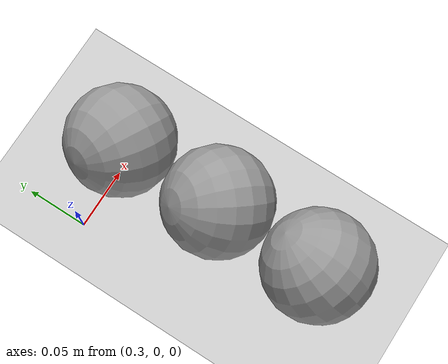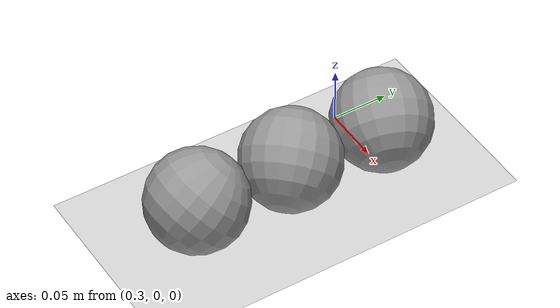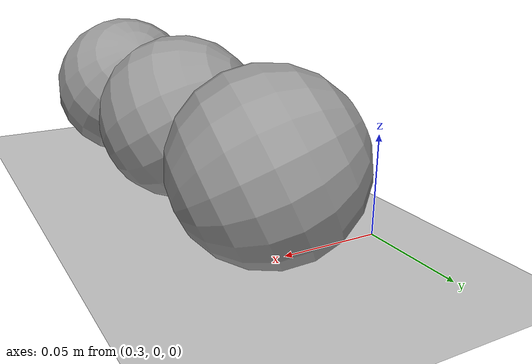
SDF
<sdf version="1.6">
 <world name="default">
  <model name="ground_plane">
   <static>1</static>
   <link name="link">
    <collision name="collision">
     <geometry><plane><normal>0 0 1</normal><size>100 100</size></plane></geometry>
     <surface>
      <contact><collide_bitmask>65535</collide_bitmask></contact>
      <friction><ode><mu>100</mu><mu2>50</mu2></ode></friction>
     </surface>
    </collision>
    <visual name="visual">
     <cast_shadows>0</cast_shadows>
     <geometry><plane><normal>0 0 1</normal><size>100 100</size></plane></geometry>
     <material>
      <script><uri>file://media/materials/scripts/gazebo.material</uri><name>Gazebo/Grey</name></script>
     </material>
    </visual>
   </link>
  </model>
  <model name="unit_sphere_clone_2_clone_4">
   <link name="link">
    <inertial>
     <mass>0.000642099</mass>
     <inertia>
      <ixx>4.77879e-07</ixx>
      <ixy>0</ixy>
      <ixz>0</ixz>
      <iyy>4.77879e-07</iyy>
      <iyz>0</iyz>
      <izz>4.77879e-07</izz>
     </inertia>
    </inertial>
    <visual name="visual">
     <geometry><sphere><radius>0.0431354</radius></sphere></geometry>
     <material>
      <script><name>Gazebo/Grey</name><uri>file://media/materials/scripts/gazebo.material</uri></script>
      <shader type="pixel"/>
      <ambient>0.3 0.3 0.3 1</ambient>
      <diffuse>0.7 0.7 0.7 1</diffuse>
      <specular>0.01 0.01 0.01 1</specular>
      <emissive>0 0 0 1</emissive>
     </material>
    </visual>
    <collision name="collision">
     <geometry><sphere><radius>0.043135</radius></sphere></geometry>
     <surface>
      <friction>
       <ode><mu>1</mu><mu2>1</mu2><fdir1>0 0 0</fdir1><slip1>0</slip1><slip2>0</slip2></ode>
       <torsional>
        <coefficient>1</coefficient>
        <patch_radius>0</patch_radius>
        <surface_radius>0</surface_radius>
        <use_patch_radius>1</use_patch_radius>
        <ode><slip>0</slip></ode>
       </torsional>
      </friction>
      <bounce><restitution_coefficient>0</restitution_coefficient><threshold>1e+06</threshold></bounce>
      <contact>
       <collide_without_contact>0</collide_without_contact>
       <collide_without_contact_bitmask>1</collide_without_contact_bitmask>
       <collide_bitmask>1</collide_bitmask>
       <ode>
        <soft_cfm>0</soft_cfm>
        <soft_erp>0.2</soft_erp>
        <kp>1e+13</kp>
        <kd>1</kd>
        <max_vel>0.01</max_vel>
        <min_depth>0</min_depth>
       </ode>
       <bullet>
        <split_impulse>1</split_impulse>
        <split_impulse_penetration_threshold>-0.01</split_impulse_penetration_threshold>
        <soft_cfm>0</soft_cfm>
        <soft_erp>0.2</soft_erp>
        <kp>1e+13</kp>
        <kd>1</kd>
       </bullet>
      </contact>
     </surface>
    </collision>
   </link>
   <static>0</static>
   <pose>0.362847 -0.082969 0.046444 -0.88253 -0.573731 0.402038</pose>
  </model>
  <model name="unit_sphere_clone_4_clone_1_clone">
   <link name="link">
    <inertial>
     <mass>0.000642099</mass>
     <inertia>
      <ixx>4.77879e-07</ixx>
      <ixy>0</ixy>
      <ixz>0</ixz>
      <iyy>4.77879e-07</iyy>
      <iyz>0</iyz>
      <izz>4.77879e-07</izz>
     </inertia>
    </inertial>
    <visual name="visual">
     <geometry><sphere><radius>0.0431354</radius></sphere></geometry>
     <material>
      <script><name>Gazebo/Grey</name><uri>file://media/materials/scripts/gazebo.material</uri></script>
      <shader type="pixel"/>
      <ambient>0.3 0.3 0.3 1</ambient>
      <diffuse>0.7 0.7 0.7 1</diffuse>
      <specular>0.01 0.01 0.01 1</specular>
      <emissive>0 0 0 1</emissive>
     </material>
    </visual>
    <collision name="collision">
     <geometry><sphere><radius>0.043135</radius></sphere></geometry>
     <surface>
      <friction>
       <ode><mu>1</mu><mu2>1</mu2><fdir1>0 0 0</fdir1><slip1>0</slip1><slip2>0</slip2></ode>
       <torsional>
        <coefficient>1</coefficient>
        <patch_radius>0</patch_radius>
        <surface_radius>0</surface_radius>
        <use_patch_radius>1</use_patch_radius>
        <ode><slip>0</slip></ode>
       </torsional>
      </friction>
      <bounce><restitution_coefficient>0</restitution_coefficient><threshold>1e+06</threshold></bounce>
      <contact>
       <collide_without_contact>0</collide_without_contact>
       <collide_without_contact_bitmask>1</collide_without_contact_bitmask>
       <collide_bitmask>1</collide_bitmask>
       <ode>
        <soft_cfm>0</soft_cfm>
        <soft_erp>0.2</soft_erp>
        <kp>1e+13</kp>
        <kd>1</kd>
        <max_vel>0.01</max_vel>
        <min_depth>0</min_depth>
       </ode>
       <bullet>
        <split_impulse>1</split_impulse>
        <split_impulse_penetration_threshold>-0.01</split_impulse_penetration_threshold>
        <soft_cfm>0</soft_cfm>
        <soft_erp>0.2</soft_erp>
        <kp>1e+13</kp>
        <kd>1</kd>
       </bullet>
      </contact>
     </surface>
    </collision>
   </link>
   <static>0</static>
   <pose>0.363222 0.003305 0.04647 -2.60839 1.05018 -2.89248</pose>
  </model>
  <model name="unit_sphere_clone_4_clone_1_clone_3_clone_1_clone_0">
   <link name="link">
    <inertial>
     <mass>0.000642099</mass>
     <inertia>
      <ixx>4.77879e-07</ixx>
      <ixy>0</ixy>
      <ixz>0</ixz>
      <iyy>4.77879e-07</iyy>
      <iyz>0</iyz>
      <izz>4.77879e-07</izz>
     </inertia>
    </inertial>
    <visual name="visual">
     <geometry><sphere><radius>0.0431354</radius></sphere></geometry>
     <material>
      <script><name>Gazebo/Grey</name><uri>file://media/materials/scripts/gazebo.material</uri></script>
      <shader type="pixel"/>
      <ambient>0.3 0.3 0.3 1</ambient>
      <diffuse>0.7 0.7 0.7 1</diffuse>
      <specular>0.01 0.01 0.01 1</specular>
      <emissive>0 0 0 1</emissive>
     </material>
    </visual>
    <collision name="collision">
     <geometry><sphere><radius>0.043135</radius></sphere></geometry>
     <surface>
      <friction>
       <ode><mu>1</mu><mu2>1</mu2><fdir1>0 0 0</fdir1><slip1>0</slip1><slip2>0</slip2></ode>
       <torsional>
        <coefficient>1</coefficient>
        <patch_radius>0</patch_radius>
        <surface_radius>0</surface_radius>
        <use_patch_radius>1</use_patch_radius>
        <ode><slip>0</slip></ode>
       </torsional>
      </friction>
      <bounce><restitution_coefficient>0</restitution_coefficient><threshold>1e+06</threshold></bounce>
      <contact>
       <collide_without_contact>0</collide_without_contact>
       <collide_without_contact_bitmask>1</collide_without_contact_bitmask>
       <collide_bitmask>1</collide_bitmask>
       <ode>
        <soft_cfm>0</soft_cfm>
        <soft_erp>0.2</soft_erp>
        <kp>1e+13</kp>
        <kd>1</kd>
        <max_vel>0.01</max_vel>
        <min_depth>0</min_depth>
       </ode>
       <bullet>
        <split_impulse>1</split_impulse>
        <split_impulse_penetration_threshold>-0.01</split_impulse_penetration_threshold>
        <soft_cfm>0</soft_cfm>
        <soft_erp>0.2</soft_erp>
        <kp>1e+13</kp>
        <kd>1</kd>
       </bullet>
      </contact>
     </surface>
    </collision>
   </link>
   <static>0</static>
   <pose>0.362479 -0.169238 0.046415 2.32721 -0.197747 -0.223917</pose>
  </model>
 </world>
</sdf>
